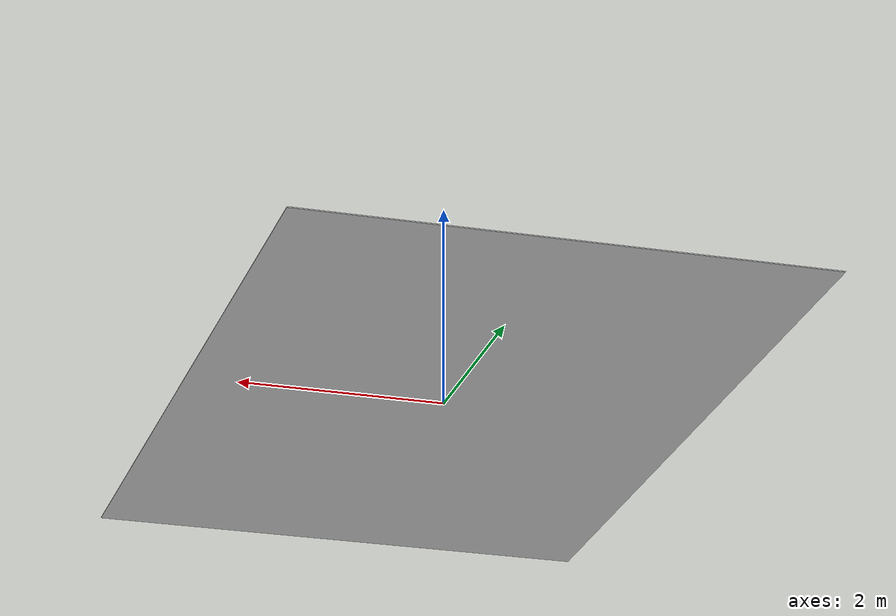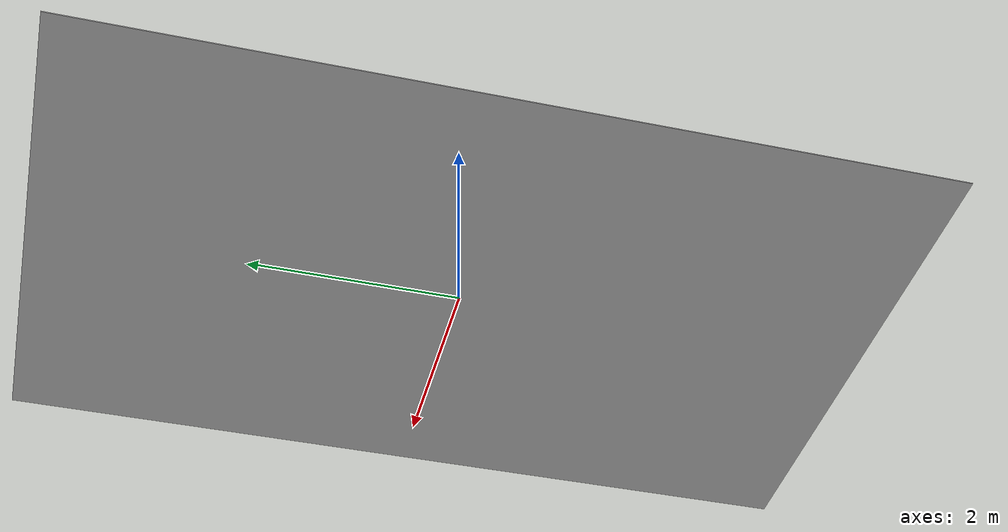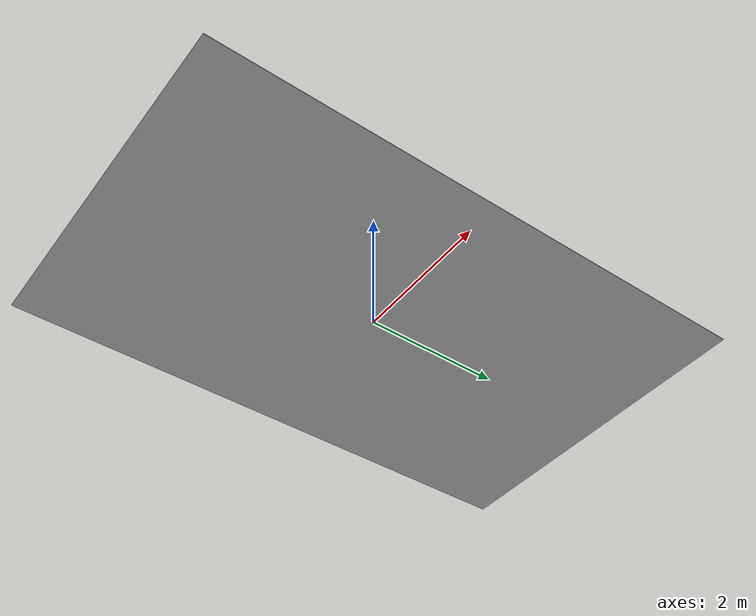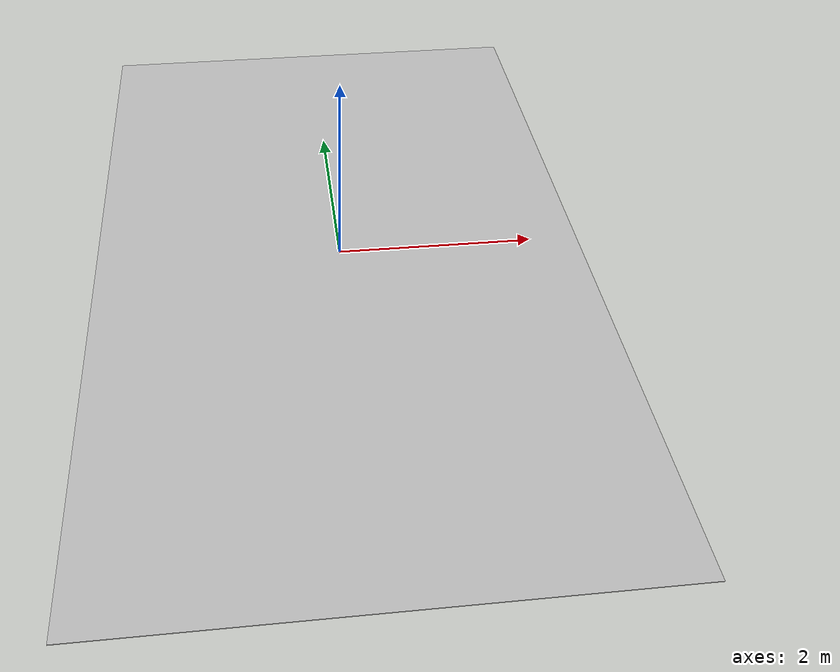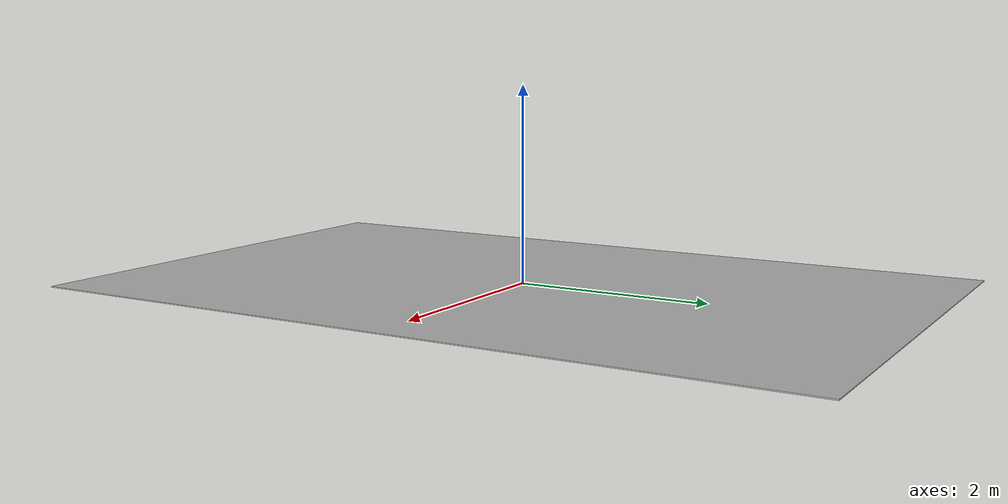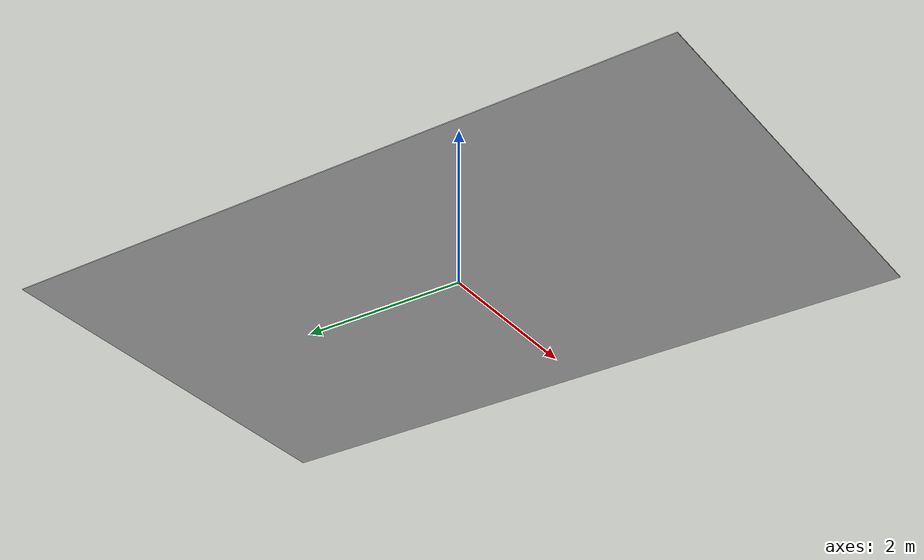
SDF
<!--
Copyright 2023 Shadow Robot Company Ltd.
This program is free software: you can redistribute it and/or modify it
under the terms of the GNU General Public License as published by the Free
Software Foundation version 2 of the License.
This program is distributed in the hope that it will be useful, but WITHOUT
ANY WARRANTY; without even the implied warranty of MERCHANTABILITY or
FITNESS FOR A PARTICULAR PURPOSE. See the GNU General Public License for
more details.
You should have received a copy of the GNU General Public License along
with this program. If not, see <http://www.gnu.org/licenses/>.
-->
<?xml version='1.0'?>

<sdf version="1.4">
<model name="ground_large">
    <static>true</static>
    <link name="link">
      <pose>0 0 -0.005 0 0 0</pose>
      <collision name="collision">
        <geometry>
          <box>
            <size>5.0 8.0 0.01</size>
          </box>
        </geometry>
      </collision>
      <visual name="visual">
        <geometry>
          <box>
            <size>5.0 8.0 0.01</size>
          </box>
        </geometry>
      </visual>
    </link>
  </model>
</sdf>
